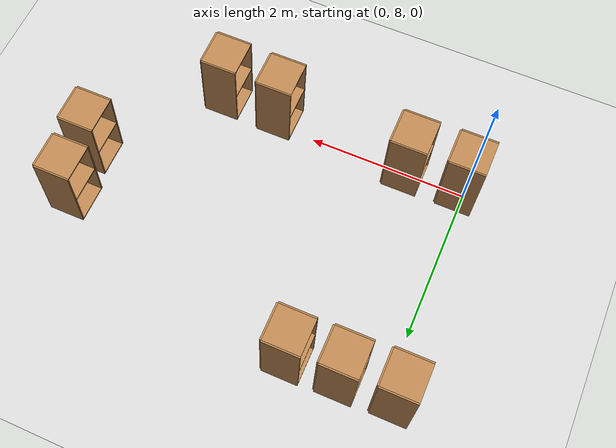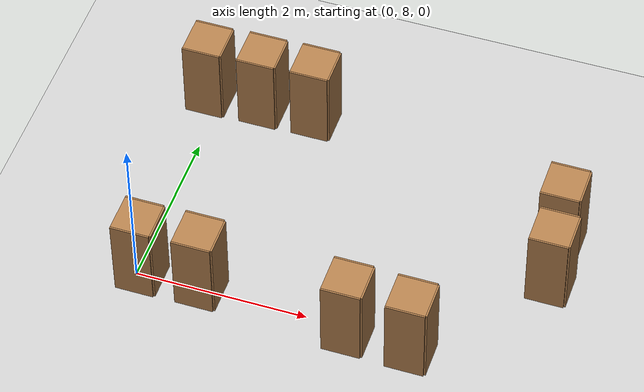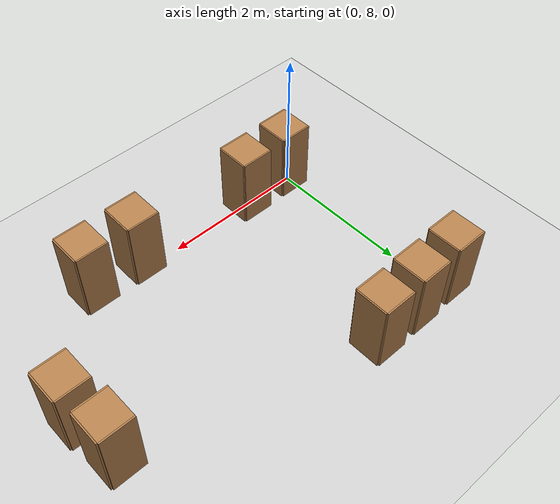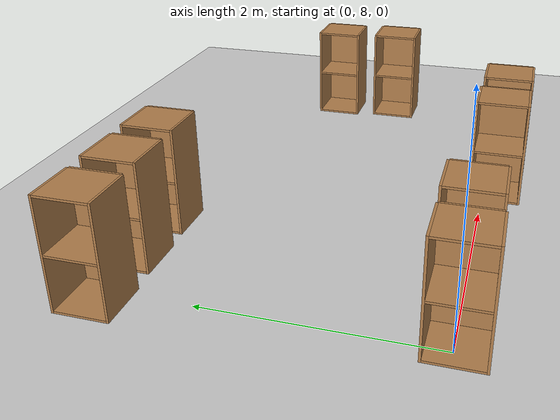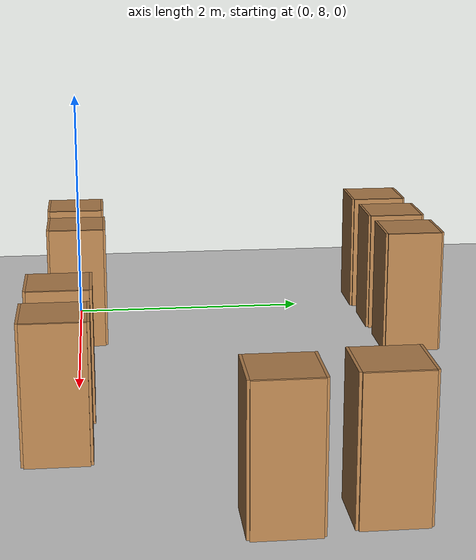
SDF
<sdf version="1.6">
 <world name="default">
  <model name="ground_plane">
   <static>1</static>
   <link name="link">
    <collision name="collision">
     <geometry><plane><normal>0 0 1</normal><size>100 100</size></plane></geometry>
     <surface><friction><ode><mu>100</mu><mu2>50</mu2></ode></friction></surface>
    </collision>
    <visual name="visual">
     <cast_shadows>0</cast_shadows>
     <geometry><plane><normal>0 0 1</normal><size>100 100</size></plane></geometry>
     <material>
      <script><uri>file://media/materials/scripts/gazebo.material</uri><name>Gazebo/Grey</name></script>
     </material>
    </visual>
   </link>
  </model>
  <model name="cabinet">
   <static>1</static>
   <link name="cabinet_bottom_plate">
    <inertial>
     <pose>0 0 -1 0 -0 0</pose>
     <inertia><ixx>2.05</ixx><ixy>0</ixy><ixz>0</ixz><iyy>2.05</iyy><iyz>0</iyz><izz>2.05</izz></inertia>
     <mass>25</mass>
    </inertial>
    <collision name="cabinet_bottom_plate_geom">
     <pose>0 0 0.01 0 -0 0</pose>
     <geometry><box><size>0.45 0.45 0.02</size></box></geometry>
    </collision>
    <visual name="cabinet_bottom_plate_geom_visual">
     <pose>0 0 0.01 0 -0 0</pose>
     <geometry><box><size>0.45 0.45 0.02</size></box></geometry>
     <material>
      <script><uri>file://media/materials/scripts/gazebo.material</uri><name>Gazebo/Wood</name></script>
     </material>
    </visual>
    <collision name="cabinet_bottom_plate_geom_cabinet_back_plate">
     <pose>0.235 0 0.51 0 -0 0</pose>
     <geometry><box><size>0.02 0.45 1.02</size></box></geometry>
    </collision>
    <visual name="cabinet_bottom_plate_geom_cabinet_back_plate_visual">
     <pose>0.235 0 0.51 0 -0 0</pose>
     <geometry><box><size>0.02 0.45 1.02</size></box></geometry>
     <material>
      <script><uri>file://media/materials/scripts/gazebo.material</uri><name>Gazebo/Wood</name></script>
     </material>
    </visual>
    <collision name="cabinet_bottom_plate_geom_cabinet_left_plate">
     <pose>0 0.235 0.51 0 -0 0</pose>
     <geometry><box><size>0.45 0.02 1.02</size></box></geometry>
    </collision>
    <visual name="cabinet_bottom_plate_geom_cabinet_left_plate_visual">
     <pose>0 0.235 0.51 0 -0 0</pose>
     <geometry><box><size>0.45 0.02 1.02</size></box></geometry>
     <material>
      <script><uri>file://media/materials/scripts/gazebo.material</uri><name>Gazebo/Wood</name></script>
     </material>
    </visual>
    <collision name="cabinet_bottom_plate_geom_cabinet_middle_plate">
     <pose>0 0 0.51 0 -0 0</pose>
     <geometry><box><size>0.45 0.45 0.02</size></box></geometry>
    </collision>
    <visual name="cabinet_bottom_plate_geom_cabinet_middle_plate_visual">
     <pose>0 0 0.51 0 -0 0</pose>
     <geometry><box><size>0.45 0.45 0.02</size></box></geometry>
     <material>
      <script><uri>file://media/materials/scripts/gazebo.material</uri><name>Gazebo/Wood</name></script>
     </material>
    </visual>
    <collision name="cabinet_bottom_plate_geom_cabinet_right_plate">
     <pose>0 -0.235 0.51 0 -0 0</pose>
     <geometry><box><size>0.45 0.02 1.02</size></box></geometry>
    </collision>
    <visual name="cabinet_bottom_plate_geom_cabinet_right_plate_visual">
     <pose>0 -0.235 0.51 0 -0 0</pose>
     <geometry><box><size>0.45 0.02 1.02</size></box></geometry>
     <material>
      <script><uri>file://media/materials/scripts/gazebo.material</uri><name>Gazebo/Wood</name></script>
     </material>
    </visual>
    <collision name="cabinet_bottom_plate_geom_cabinet_top_plate">
     <pose>0 0 1.01 0 -0 0</pose>
     <geometry><box><size>0.45 0.45 0.02</size></box></geometry>
    </collision>
    <visual name="cabinet_bottom_plate_geom_cabinet_top_plate_visual">
     <pose>0 0 1.01 0 -0 0</pose>
     <geometry><box><size>0.45 0.45 0.02</size></box></geometry>
     <material>
      <script><uri>file://media/materials/scripts/gazebo.material</uri><name>Gazebo/Wood</name></script>
     </material>
    </visual>
   </link>
   <pose>-0.133695 10.7508 0 0 -0 0</pose>
  </model>
  <model name="cabinet_clone">
   <static>1</static>
   <link name="cabinet_bottom_plate">
    <inertial>
     <pose>0 0 -1 0 -0 0</pose>
     <inertia><ixx>2.05</ixx><ixy>0</ixy><ixz>0</ixz><iyy>2.05</iyy><iyz>0</iyz><izz>2.05</izz></inertia>
     <mass>25</mass>
    </inertial>
    <collision name="cabinet_bottom_plate_geom">
     <pose>0 0 0.01 0 -0 0</pose>
     <geometry><box><size>0.45 0.45 0.02</size></box></geometry>
    </collision>
    <visual name="cabinet_bottom_plate_geom_visual">
     <pose>0 0 0.01 0 -0 0</pose>
     <geometry><box><size>0.45 0.45 0.02</size></box></geometry>
     <material>
      <script><uri>file://media/materials/scripts/gazebo.material</uri><name>Gazebo/Wood</name></script>
     </material>
    </visual>
    <collision name="cabinet_bottom_plate_geom_cabinet_back_plate">
     <pose>0.235 0 0.51 0 -0 0</pose>
     <geometry><box><size>0.02 0.45 1.02</size></box></geometry>
    </collision>
    <visual name="cabinet_bottom_plate_geom_cabinet_back_plate_visual">
     <pose>0.235 0 0.51 0 -0 0</pose>
     <geometry><box><size>0.02 0.45 1.02</size></box></geometry>
     <material>
      <script><uri>file://media/materials/scripts/gazebo.material</uri><name>Gazebo/Wood</name></script>
     </material>
    </visual>
    <collision name="cabinet_bottom_plate_geom_cabinet_left_plate">
     <pose>0 0.235 0.51 0 -0 0</pose>
     <geometry><box><size>0.45 0.02 1.02</size></box></geometry>
    </collision>
    <visual name="cabinet_bottom_plate_geom_cabinet_left_plate_visual">
     <pose>0 0.235 0.51 0 -0 0</pose>
     <geometry><box><size>0.45 0.02 1.02</size></box></geometry>
     <material>
      <script><uri>file://media/materials/scripts/gazebo.material</uri><name>Gazebo/Wood</name></script>
     </material>
    </visual>
    <collision name="cabinet_bottom_plate_geom_cabinet_middle_plate">
     <pose>0 0 0.51 0 -0 0</pose>
     <geometry><box><size>0.45 0.45 0.02</size></box></geometry>
    </collision>
    <visual name="cabinet_bottom_plate_geom_cabinet_middle_plate_visual">
     <pose>0 0 0.51 0 -0 0</pose>
     <geometry><box><size>0.45 0.45 0.02</size></box></geometry>
     <material>
      <script><uri>file://media/materials/scripts/gazebo.material</uri><name>Gazebo/Wood</name></script>
     </material>
    </visual>
    <collision name="cabinet_bottom_plate_geom_cabinet_right_plate">
     <pose>0 -0.235 0.51 0 -0 0</pose>
     <geometry><box><size>0.45 0.02 1.02</size></box></geometry>
    </collision>
    <visual name="cabinet_bottom_plate_geom_cabinet_right_plate_visual">
     <pose>0 -0.235 0.51 0 -0 0</pose>
     <geometry><box><size>0.45 0.02 1.02</size></box></geometry>
     <material>
      <script><uri>file://media/materials/scripts/gazebo.material</uri><name>Gazebo/Wood</name></script>
     </material>
    </visual>
    <collision name="cabinet_bottom_plate_geom_cabinet_top_plate">
     <pose>0 0 1.01 0 -0 0</pose>
     <geometry><box><size>0.45 0.45 0.02</size></box></geometry>
    </collision>
    <visual name="cabinet_bottom_plate_geom_cabinet_top_plate_visual">
     <pose>0 0 1.01 0 -0 0</pose>
     <geometry><box><size>0.45 0.45 0.02</size></box></geometry>
     <material>
      <script><uri>file://media/materials/scripts/gazebo.material</uri><name>Gazebo/Wood</name></script>
     </material>
    </visual>
   </link>
   <pose>0.518667 10.7725 0 0 -0 0</pose>
  </model>
  <model name="cabinet_clone_0">
   <static>1</static>
   <link name="cabinet_bottom_plate">
    <inertial>
     <pose>0 0 -1 0 -0 0</pose>
     <inertia><ixx>2.05</ixx><ixy>0</ixy><ixz>0</ixz><iyy>2.05</iyy><iyz>0</iyz><izz>2.05</izz></inertia>
     <mass>25</mass>
    </inertial>
    <collision name="cabinet_bottom_plate_geom">
     <pose>0 0 0.01 0 -0 0</pose>
     <geometry><box><size>0.45 0.45 0.02</size></box></geometry>
    </collision>
    <visual name="cabinet_bottom_plate_geom_visual">
     <pose>0 0 0.01 0 -0 0</pose>
     <geometry><box><size>0.45 0.45 0.02</size></box></geometry>
     <material>
      <script><uri>file://media/materials/scripts/gazebo.material</uri><name>Gazebo/Wood</name></script>
     </material>
    </visual>
    <collision name="cabinet_bottom_plate_geom_cabinet_back_plate">
     <pose>0.235 0 0.51 0 -0 0</pose>
     <geometry><box><size>0.02 0.45 1.02</size></box></geometry>
    </collision>
    <visual name="cabinet_bottom_plate_geom_cabinet_back_plate_visual">
     <pose>0.235 0 0.51 0 -0 0</pose>
     <geometry><box><size>0.02 0.45 1.02</size></box></geometry>
     <material>
      <script><uri>file://media/materials/scripts/gazebo.material</uri><name>Gazebo/Wood</name></script>
     </material>
    </visual>
    <collision name="cabinet_bottom_plate_geom_cabinet_left_plate">
     <pose>0 0.235 0.51 0 -0 0</pose>
     <geometry><box><size>0.45 0.02 1.02</size></box></geometry>
    </collision>
    <visual name="cabinet_bottom_plate_geom_cabinet_left_plate_visual">
     <pose>0 0.235 0.51 0 -0 0</pose>
     <geometry><box><size>0.45 0.02 1.02</size></box></geometry>
     <material>
      <script><uri>file://media/materials/scripts/gazebo.material</uri><name>Gazebo/Wood</name></script>
     </material>
    </visual>
    <collision name="cabinet_bottom_plate_geom_cabinet_middle_plate">
     <pose>0 0 0.51 0 -0 0</pose>
     <geometry><box><size>0.45 0.45 0.02</size></box></geometry>
    </collision>
    <visual name="cabinet_bottom_plate_geom_cabinet_middle_plate_visual">
     <pose>0 0 0.51 0 -0 0</pose>
     <geometry><box><size>0.45 0.45 0.02</size></box></geometry>
     <material>
      <script><uri>file://media/materials/scripts/gazebo.material</uri><name>Gazebo/Wood</name></script>
     </material>
    </visual>
    <collision name="cabinet_bottom_plate_geom_cabinet_right_plate">
     <pose>0 -0.235 0.51 0 -0 0</pose>
     <geometry><box><size>0.45 0.02 1.02</size></box></geometry>
    </collision>
    <visual name="cabinet_bottom_plate_geom_cabinet_right_plate_visual">
     <pose>0 -0.235 0.51 0 -0 0</pose>
     <geometry><box><size>0.45 0.02 1.02</size></box></geometry>
     <material>
      <script><uri>file://media/materials/scripts/gazebo.material</uri><name>Gazebo/Wood</name></script>
     </material>
    </visual>
    <collision name="cabinet_bottom_plate_geom_cabinet_top_plate">
     <pose>0 0 1.01 0 -0 0</pose>
     <geometry><box><size>0.45 0.45 0.02</size></box></geometry>
    </collision>
    <visual name="cabinet_bottom_plate_geom_cabinet_top_plate_visual">
     <pose>0 0 1.01 0 -0 0</pose>
     <geometry><box><size>0.45 0.45 0.02</size></box></geometry>
     <material>
      <script><uri>file://media/materials/scripts/gazebo.material</uri><name>Gazebo/Wood</name></script>
     </material>
    </visual>
   </link>
   <pose>1.15878 10.7877 0 0 -0 0</pose>
  </model>
  <model name="cabinet_clone_1">
   <static>1</static>
   <link name="cabinet_bottom_plate">
    <inertial>
     <pose>0 0 -1 0 -0 0</pose>
     <inertia><ixx>2.05</ixx><ixy>0</ixy><ixz>0</ixz><iyy>2.05</iyy><iyz>0</iyz><izz>2.05</izz></inertia>
     <mass>25</mass>
    </inertial>
    <collision name="cabinet_bottom_plate_geom">
     <pose>0 0 0.01 0 -0 0</pose>
     <geometry><box><size>0.45 0.45 0.02</size></box></geometry>
    </collision>
    <visual name="cabinet_bottom_plate_geom_visual">
     <pose>0 0 0.01 0 -0 0</pose>
     <geometry><box><size>0.45 0.45 0.02</size></box></geometry>
     <material>
      <script><uri>file://media/materials/scripts/gazebo.material</uri><name>Gazebo/Wood</name></script>
     </material>
    </visual>
    <collision name="cabinet_bottom_plate_geom_cabinet_back_plate">
     <pose>0.235 0 0.51 0 -0 0</pose>
     <geometry><box><size>0.02 0.45 1.02</size></box></geometry>
    </collision>
    <visual name="cabinet_bottom_plate_geom_cabinet_back_plate_visual">
     <pose>0.235 0 0.51 0 -0 0</pose>
     <geometry><box><size>0.02 0.45 1.02</size></box></geometry>
     <material>
      <script><uri>file://media/materials/scripts/gazebo.material</uri><name>Gazebo/Wood</name></script>
     </material>
    </visual>
    <collision name="cabinet_bottom_plate_geom_cabinet_left_plate">
     <pose>0 0.235 0.51 0 -0 0</pose>
     <geometry><box><size>0.45 0.02 1.02</size></box></geometry>
    </collision>
    <visual name="cabinet_bottom_plate_geom_cabinet_left_plate_visual">
     <pose>0 0.235 0.51 0 -0 0</pose>
     <geometry><box><size>0.45 0.02 1.02</size></box></geometry>
     <material>
      <script><uri>file://media/materials/scripts/gazebo.material</uri><name>Gazebo/Wood</name></script>
     </material>
    </visual>
    <collision name="cabinet_bottom_plate_geom_cabinet_middle_plate">
     <pose>0 0 0.51 0 -0 0</pose>
     <geometry><box><size>0.45 0.45 0.02</size></box></geometry>
    </collision>
    <visual name="cabinet_bottom_plate_geom_cabinet_middle_plate_visual">
     <pose>0 0 0.51 0 -0 0</pose>
     <geometry><box><size>0.45 0.45 0.02</size></box></geometry>
     <material>
      <script><uri>file://media/materials/scripts/gazebo.material</uri><name>Gazebo/Wood</name></script>
     </material>
    </visual>
    <collision name="cabinet_bottom_plate_geom_cabinet_right_plate">
     <pose>0 -0.235 0.51 0 -0 0</pose>
     <geometry><box><size>0.45 0.02 1.02</size></box></geometry>
    </collision>
    <visual name="cabinet_bottom_plate_geom_cabinet_right_plate_visual">
     <pose>0 -0.235 0.51 0 -0 0</pose>
     <geometry><box><size>0.45 0.02 1.02</size></box></geometry>
     <material>
      <script><uri>file://media/materials/scripts/gazebo.material</uri><name>Gazebo/Wood</name></script>
     </material>
    </visual>
    <collision name="cabinet_bottom_plate_geom_cabinet_top_plate">
     <pose>0 0 1.01 0 -0 0</pose>
     <geometry><box><size>0.45 0.45 0.02</size></box></geometry>
    </collision>
    <visual name="cabinet_bottom_plate_geom_cabinet_top_plate_visual">
     <pose>0 0 1.01 0 -0 0</pose>
     <geometry><box><size>0.45 0.45 0.02</size></box></geometry>
     <material>
      <script><uri>file://media/materials/scripts/gazebo.material</uri><name>Gazebo/Wood</name></script>
     </material>
    </visual>
   </link>
   <pose>0.065893 7.98037 0 0 -0 0</pose>
  </model>
  <model name="cabinet_clone_2">
   <static>1</static>
   <link name="cabinet_bottom_plate">
    <inertial>
     <pose>0 0 -1 0 -0 0</pose>
     <inertia><ixx>2.05</ixx><ixy>0</ixy><ixz>0</ixz><iyy>2.05</iyy><iyz>0</iyz><izz>2.05</izz></inertia>
     <mass>25</mass>
    </inertial>
    <collision name="cabinet_bottom_plate_geom">
     <pose>0 0 0.01 0 -0 0</pose>
     <geometry><box><size>0.45 0.45 0.02</size></box></geometry>
    </collision>
    <visual name="cabinet_bottom_plate_geom_visual">
     <pose>0 0 0.01 0 -0 0</pose>
     <geometry><box><size>0.45 0.45 0.02</size></box></geometry>
     <material>
      <script><uri>file://media/materials/scripts/gazebo.material</uri><name>Gazebo/Wood</name></script>
     </material>
    </visual>
    <collision name="cabinet_bottom_plate_geom_cabinet_back_plate">
     <pose>0.235 0 0.51 0 -0 0</pose>
     <geometry><box><size>0.02 0.45 1.02</size></box></geometry>
    </collision>
    <visual name="cabinet_bottom_plate_geom_cabinet_back_plate_visual">
     <pose>0.235 0 0.51 0 -0 0</pose>
     <geometry><box><size>0.02 0.45 1.02</size></box></geometry>
     <material>
      <script><uri>file://media/materials/scripts/gazebo.material</uri><name>Gazebo/Wood</name></script>
     </material>
    </visual>
    <collision name="cabinet_bottom_plate_geom_cabinet_left_plate">
     <pose>0 0.235 0.51 0 -0 0</pose>
     <geometry><box><size>0.45 0.02 1.02</size></box></geometry>
    </collision>
    <visual name="cabinet_bottom_plate_geom_cabinet_left_plate_visual">
     <pose>0 0.235 0.51 0 -0 0</pose>
     <geometry><box><size>0.45 0.02 1.02</size></box></geometry>
     <material>
      <script><uri>file://media/materials/scripts/gazebo.material</uri><name>Gazebo/Wood</name></script>
     </material>
    </visual>
    <collision name="cabinet_bottom_plate_geom_cabinet_middle_plate">
     <pose>0 0 0.51 0 -0 0</pose>
     <geometry><box><size>0.45 0.45 0.02</size></box></geometry>
    </collision>
    <visual name="cabinet_bottom_plate_geom_cabinet_middle_plate_visual">
     <pose>0 0 0.51 0 -0 0</pose>
     <geometry><box><size>0.45 0.45 0.02</size></box></geometry>
     <material>
      <script><uri>file://media/materials/scripts/gazebo.material</uri><name>Gazebo/Wood</name></script>
     </material>
    </visual>
    <collision name="cabinet_bottom_plate_geom_cabinet_right_plate">
     <pose>0 -0.235 0.51 0 -0 0</pose>
     <geometry><box><size>0.45 0.02 1.02</size></box></geometry>
    </collision>
    <visual name="cabinet_bottom_plate_geom_cabinet_right_plate_visual">
     <pose>0 -0.235 0.51 0 -0 0</pose>
     <geometry><box><size>0.45 0.02 1.02</size></box></geometry>
     <material>
      <script><uri>file://media/materials/scripts/gazebo.material</uri><name>Gazebo/Wood</name></script>
     </material>
    </visual>
    <collision name="cabinet_bottom_plate_geom_cabinet_top_plate">
     <pose>0 0 1.01 0 -0 0</pose>
     <geometry><box><size>0.45 0.45 0.02</size></box></geometry>
    </collision>
    <visual name="cabinet_bottom_plate_geom_cabinet_top_plate_visual">
     <pose>0 0 1.01 0 -0 0</pose>
     <geometry><box><size>0.45 0.45 0.02</size></box></geometry>
     <material>
      <script><uri>file://media/materials/scripts/gazebo.material</uri><name>Gazebo/Wood</name></script>
     </material>
    </visual>
   </link>
   <pose>0.766564 7.9919 0 0 -0 0</pose>
  </model>
  <model name="cabinet_clone_3">
   <static>1</static>
   <link name="cabinet_bottom_plate">
    <inertial>
     <pose>0 0 -1 0 -0 0</pose>
     <inertia><ixx>2.05</ixx><ixy>0</ixy><ixz>0</ixz><iyy>2.05</iyy><iyz>0</iyz><izz>2.05</izz></inertia>
     <mass>25</mass>
    </inertial>
    <collision name="cabinet_bottom_plate_geom">
     <pose>0 0 0.01 0 -0 0</pose>
     <geometry><box><size>0.45 0.45 0.02</size></box></geometry>
    </collision>
    <visual name="cabinet_bottom_plate_geom_visual">
     <pose>0 0 0.01 0 -0 0</pose>
     <geometry><box><size>0.45 0.45 0.02</size></box></geometry>
     <material>
      <script><uri>file://media/materials/scripts/gazebo.material</uri><name>Gazebo/Wood</name></script>
     </material>
    </visual>
    <collision name="cabinet_bottom_plate_geom_cabinet_back_plate">
     <pose>0.235 0 0.51 0 -0 0</pose>
     <geometry><box><size>0.02 0.45 1.02</size></box></geometry>
    </collision>
    <visual name="cabinet_bottom_plate_geom_cabinet_back_plate_visual">
     <pose>0.235 0 0.51 0 -0 0</pose>
     <geometry><box><size>0.02 0.45 1.02</size></box></geometry>
     <material>
      <script><uri>file://media/materials/scripts/gazebo.material</uri><name>Gazebo/Wood</name></script>
     </material>
    </visual>
    <collision name="cabinet_bottom_plate_geom_cabinet_left_plate">
     <pose>0 0.235 0.51 0 -0 0</pose>
     <geometry><box><size>0.45 0.02 1.02</size></box></geometry>
    </collision>
    <visual name="cabinet_bottom_plate_geom_cabinet_left_plate_visual">
     <pose>0 0.235 0.51 0 -0 0</pose>
     <geometry><box><size>0.45 0.02 1.02</size></box></geometry>
     <material>
      <script><uri>file://media/materials/scripts/gazebo.material</uri><name>Gazebo/Wood</name></script>
     </material>
    </visual>
    <collision name="cabinet_bottom_plate_geom_cabinet_middle_plate">
     <pose>0 0 0.51 0 -0 0</pose>
     <geometry><box><size>0.45 0.45 0.02</size></box></geometry>
    </collision>
    <visual name="cabinet_bottom_plate_geom_cabinet_middle_plate_visual">
     <pose>0 0 0.51 0 -0 0</pose>
     <geometry><box><size>0.45 0.45 0.02</size></box></geometry>
     <material>
      <script><uri>file://media/materials/scripts/gazebo.material</uri><name>Gazebo/Wood</name></script>
     </material>
    </visual>
    <collision name="cabinet_bottom_plate_geom_cabinet_right_plate">
     <pose>0 -0.235 0.51 0 -0 0</pose>
     <geometry><box><size>0.45 0.02 1.02</size></box></geometry>
    </collision>
    <visual name="cabinet_bottom_plate_geom_cabinet_right_plate_visual">
     <pose>0 -0.235 0.51 0 -0 0</pose>
     <geometry><box><size>0.45 0.02 1.02</size></box></geometry>
     <material>
      <script><uri>file://media/materials/scripts/gazebo.material</uri><name>Gazebo/Wood</name></script>
     </material>
    </visual>
    <collision name="cabinet_bottom_plate_geom_cabinet_top_plate">
     <pose>0 0 1.01 0 -0 0</pose>
     <geometry><box><size>0.45 0.45 0.02</size></box></geometry>
    </collision>
    <visual name="cabinet_bottom_plate_geom_cabinet_top_plate_visual">
     <pose>0 0 1.01 0 -0 0</pose>
     <geometry><box><size>0.45 0.45 0.02</size></box></geometry>
     <material>
      <script><uri>file://media/materials/scripts/gazebo.material</uri><name>Gazebo/Wood</name></script>
     </material>
    </visual>
   </link>
   <pose>2.51064 7.88191 0 0 -0 0</pose>
  </model>
  <model name="cabinet_clone_4">
   <static>1</static>
   <link name="cabinet_bottom_plate">
    <inertial>
     <pose>0 0 -1 0 -0 0</pose>
     <inertia><ixx>2.05</ixx><ixy>0</ixy><ixz>0</ixz><iyy>2.05</iyy><iyz>0</iyz><izz>2.05</izz></inertia>
     <mass>25</mass>
    </inertial>
    <collision name="cabinet_bottom_plate_geom">
     <pose>0 0 0.01 0 -0 0</pose>
     <geometry><box><size>0.45 0.45 0.02</size></box></geometry>
    </collision>
    <visual name="cabinet_bottom_plate_geom_visual">
     <pose>0 0 0.01 0 -0 0</pose>
     <geometry><box><size>0.45 0.45 0.02</size></box></geometry>
     <material>
      <script><uri>file://media/materials/scripts/gazebo.material</uri><name>Gazebo/Wood</name></script>
     </material>
    </visual>
    <collision name="cabinet_bottom_plate_geom_cabinet_back_plate">
     <pose>0.235 0 0.51 0 -0 0</pose>
     <geometry><box><size>0.02 0.45 1.02</size></box></geometry>
    </collision>
    <visual name="cabinet_bottom_plate_geom_cabinet_back_plate_visual">
     <pose>0.235 0 0.51 0 -0 0</pose>
     <geometry><box><size>0.02 0.45 1.02</size></box></geometry>
     <material>
      <script><uri>file://media/materials/scripts/gazebo.material</uri><name>Gazebo/Wood</name></script>
     </material>
    </visual>
    <collision name="cabinet_bottom_plate_geom_cabinet_left_plate">
     <pose>0 0.235 0.51 0 -0 0</pose>
     <geometry><box><size>0.45 0.02 1.02</size></box></geometry>
    </collision>
    <visual name="cabinet_bottom_plate_geom_cabinet_left_plate_visual">
     <pose>0 0.235 0.51 0 -0 0</pose>
     <geometry><box><size>0.45 0.02 1.02</size></box></geometry>
     <material>
      <script><uri>file://media/materials/scripts/gazebo.material</uri><name>Gazebo/Wood</name></script>
     </material>
    </visual>
    <collision name="cabinet_bottom_plate_geom_cabinet_middle_plate">
     <pose>0 0 0.51 0 -0 0</pose>
     <geometry><box><size>0.45 0.45 0.02</size></box></geometry>
    </collision>
    <visual name="cabinet_bottom_plate_geom_cabinet_middle_plate_visual">
     <pose>0 0 0.51 0 -0 0</pose>
     <geometry><box><size>0.45 0.45 0.02</size></box></geometry>
     <material>
      <script><uri>file://media/materials/scripts/gazebo.material</uri><name>Gazebo/Wood</name></script>
     </material>
    </visual>
    <collision name="cabinet_bottom_plate_geom_cabinet_right_plate">
     <pose>0 -0.235 0.51 0 -0 0</pose>
     <geometry><box><size>0.45 0.02 1.02</size></box></geometry>
    </collision>
    <visual name="cabinet_bottom_plate_geom_cabinet_right_plate_visual">
     <pose>0 -0.235 0.51 0 -0 0</pose>
     <geometry><box><size>0.45 0.02 1.02</size></box></geometry>
     <material>
      <script><uri>file://media/materials/scripts/gazebo.material</uri><name>Gazebo/Wood</name></script>
     </material>
    </visual>
    <collision name="cabinet_bottom_plate_geom_cabinet_top_plate">
     <pose>0 0 1.01 0 -0 0</pose>
     <geometry><box><size>0.45 0.45 0.02</size></box></geometry>
    </collision>
    <visual name="cabinet_bottom_plate_geom_cabinet_top_plate_visual">
     <pose>0 0 1.01 0 -0 0</pose>
     <geometry><box><size>0.45 0.45 0.02</size></box></geometry>
     <material>
      <script><uri>file://media/materials/scripts/gazebo.material</uri><name>Gazebo/Wood</name></script>
     </material>
    </visual>
   </link>
   <pose>3.23952 7.8669 0 0 -0 0</pose>
  </model>
  <model name="cabinet_clone_5">
   <static>1</static>
   <link name="cabinet_bottom_plate">
    <inertial>
     <pose>0 0 -1 0 -0 0</pose>
     <inertia><ixx>2.05</ixx><ixy>0</ixy><ixz>0</ixz><iyy>2.05</iyy><iyz>0</iyz><izz>2.05</izz></inertia>
     <mass>25</mass>
    </inertial>
    <collision name="cabinet_bottom_plate_geom">
     <pose>0 0 0.01 0 -0 0</pose>
     <geometry><box><size>0.45 0.45 0.02</size></box></geometry>
    </collision>
    <visual name="cabinet_bottom_plate_geom_visual">
     <pose>0 0 0.01 0 -0 0</pose>
     <geometry><box><size>0.45 0.45 0.02</size></box></geometry>
     <material>
      <script><uri>file://media/materials/scripts/gazebo.material</uri><name>Gazebo/Wood</name></script>
     </material>
    </visual>
    <collision name="cabinet_bottom_plate_geom_cabinet_back_plate">
     <pose>0.235 0 0.51 0 -0 0</pose>
     <geometry><box><size>0.02 0.45 1.02</size></box></geometry>
    </collision>
    <visual name="cabinet_bottom_plate_geom_cabinet_back_plate_visual">
     <pose>0.235 0 0.51 0 -0 0</pose>
     <geometry><box><size>0.02 0.45 1.02</size></box></geometry>
     <material>
      <script><uri>file://media/materials/scripts/gazebo.material</uri><name>Gazebo/Wood</name></script>
     </material>
    </visual>
    <collision name="cabinet_bottom_plate_geom_cabinet_left_plate">
     <pose>0 0.235 0.51 0 -0 0</pose>
     <geometry><box><size>0.45 0.02 1.02</size></box></geometry>
    </collision>
    <visual name="cabinet_bottom_plate_geom_cabinet_left_plate_visual">
     <pose>0 0.235 0.51 0 -0 0</pose>
     <geometry><box><size>0.45 0.02 1.02</size></box></geometry>
     <material>
      <script><uri>file://media/materials/scripts/gazebo.material</uri><name>Gazebo/Wood</name></script>
     </material>
    </visual>
    <collision name="cabinet_bottom_plate_geom_cabinet_middle_plate">
     <pose>0 0 0.51 0 -0 0</pose>
     <geometry><box><size>0.45 0.45 0.02</size></box></geometry>
    </collision>
    <visual name="cabinet_bottom_plate_geom_cabinet_middle_plate_visual">
     <pose>0 0 0.51 0 -0 0</pose>
     <geometry><box><size>0.45 0.45 0.02</size></box></geometry>
     <material>
      <script><uri>file://media/materials/scripts/gazebo.material</uri><name>Gazebo/Wood</name></script>
     </material>
    </visual>
    <collision name="cabinet_bottom_plate_geom_cabinet_right_plate">
     <pose>0 -0.235 0.51 0 -0 0</pose>
     <geometry><box><size>0.45 0.02 1.02</size></box></geometry>
    </collision>
    <visual name="cabinet_bottom_plate_geom_cabinet_right_plate_visual">
     <pose>0 -0.235 0.51 0 -0 0</pose>
     <geometry><box><size>0.45 0.02 1.02</size></box></geometry>
     <material>
      <script><uri>file://media/materials/scripts/gazebo.material</uri><name>Gazebo/Wood</name></script>
     </material>
    </visual>
    <collision name="cabinet_bottom_plate_geom_cabinet_top_plate">
     <pose>0 0 1.01 0 -0 0</pose>
     <geometry><box><size>0.45 0.45 0.02</size></box></geometry>
    </collision>
    <visual name="cabinet_bottom_plate_geom_cabinet_top_plate_visual">
     <pose>0 0 1.01 0 -0 0</pose>
     <geometry><box><size>0.45 0.45 0.02</size></box></geometry>
     <material>
      <script><uri>file://media/materials/scripts/gazebo.material</uri><name>Gazebo/Wood</name></script>
     </material>
    </visual>
   </link>
   <pose>4.36247 9.93152 0 0 -0 0</pose>
  </model>
  <model name="cabinet_clone_6">
   <static>1</static>
   <link name="cabinet_bottom_plate">
    <inertial>
     <pose>0 0 -1 0 -0 0</pose>
     <inertia><ixx>2.05</ixx><ixy>0</ixy><ixz>0</ixz><iyy>2.05</iyy><iyz>0</iyz><izz>2.05</izz></inertia>
     <mass>25</mass>
    </inertial>
    <collision name="cabinet_bottom_plate_geom">
     <pose>0 0 0.01 0 -0 0</pose>
     <geometry><box><size>0.45 0.45 0.02</size></box></geometry>
    </collision>
    <visual name="cabinet_bottom_plate_geom_visual">
     <pose>0 0 0.01 0 -0 0</pose>
     <geometry><box><size>0.45 0.45 0.02</size></box></geometry>
     <material>
      <script><uri>file://media/materials/scripts/gazebo.material</uri><name>Gazebo/Wood</name></script>
     </material>
    </visual>
    <collision name="cabinet_bottom_plate_geom_cabinet_back_plate">
     <pose>0.235 0 0.51 0 -0 0</pose>
     <geometry><box><size>0.02 0.45 1.02</size></box></geometry>
    </collision>
    <visual name="cabinet_bottom_plate_geom_cabinet_back_plate_visual">
     <pose>0.235 0 0.51 0 -0 0</pose>
     <geometry><box><size>0.02 0.45 1.02</size></box></geometry>
     <material>
      <script><uri>file://media/materials/scripts/gazebo.material</uri><name>Gazebo/Wood</name></script>
     </material>
    </visual>
    <collision name="cabinet_bottom_plate_geom_cabinet_left_plate">
     <pose>0 0.235 0.51 0 -0 0</pose>
     <geometry><box><size>0.45 0.02 1.02</size></box></geometry>
    </collision>
    <visual name="cabinet_bottom_plate_geom_cabinet_left_plate_visual">
     <pose>0 0.235 0.51 0 -0 0</pose>
     <geometry><box><size>0.45 0.02 1.02</size></box></geometry>
     <material>
      <script><uri>file://media/materials/scripts/gazebo.material</uri><name>Gazebo/Wood</name></script>
     </material>
    </visual>
    <collision name="cabinet_bottom_plate_geom_cabinet_middle_plate">
     <pose>0 0 0.51 0 -0 0</pose>
     <geometry><box><size>0.45 0.45 0.02</size></box></geometry>
    </collision>
    <visual name="cabinet_bottom_plate_geom_cabinet_middle_plate_visual">
     <pose>0 0 0.51 0 -0 0</pose>
     <geometry><box><size>0.45 0.45 0.02</size></box></geometry>
     <material>
      <script><uri>file://media/materials/scripts/gazebo.material</uri><name>Gazebo/Wood</name></script>
     </material>
    </visual>
    <collision name="cabinet_bottom_plate_geom_cabinet_right_plate">
     <pose>0 -0.235 0.51 0 -0 0</pose>
     <geometry><box><size>0.45 0.02 1.02</size></box></geometry>
    </collision>
    <visual name="cabinet_bottom_plate_geom_cabinet_right_plate_visual">
     <pose>0 -0.235 0.51 0 -0 0</pose>
     <geometry><box><size>0.45 0.02 1.02</size></box></geometry>
     <material>
      <script><uri>file://media/materials/scripts/gazebo.material</uri><name>Gazebo/Wood</name></script>
     </material>
    </visual>
    <collision name="cabinet_bottom_plate_geom_cabinet_top_plate">
     <pose>0 0 1.01 0 -0 0</pose>
     <geometry><box><size>0.45 0.45 0.02</size></box></geometry>
    </collision>
    <visual name="cabinet_bottom_plate_geom_cabinet_top_plate_visual">
     <pose>0 0 1.01 0 -0 0</pose>
     <geometry><box><size>0.45 0.45 0.02</size></box></geometry>
     <material>
      <script><uri>file://media/materials/scripts/gazebo.material</uri><name>Gazebo/Wood</name></script>
     </material>
    </visual>
   </link>
   <pose>4.42476 9.25864 0 0 -0 0</pose>
  </model>
 </world>
</sdf>
